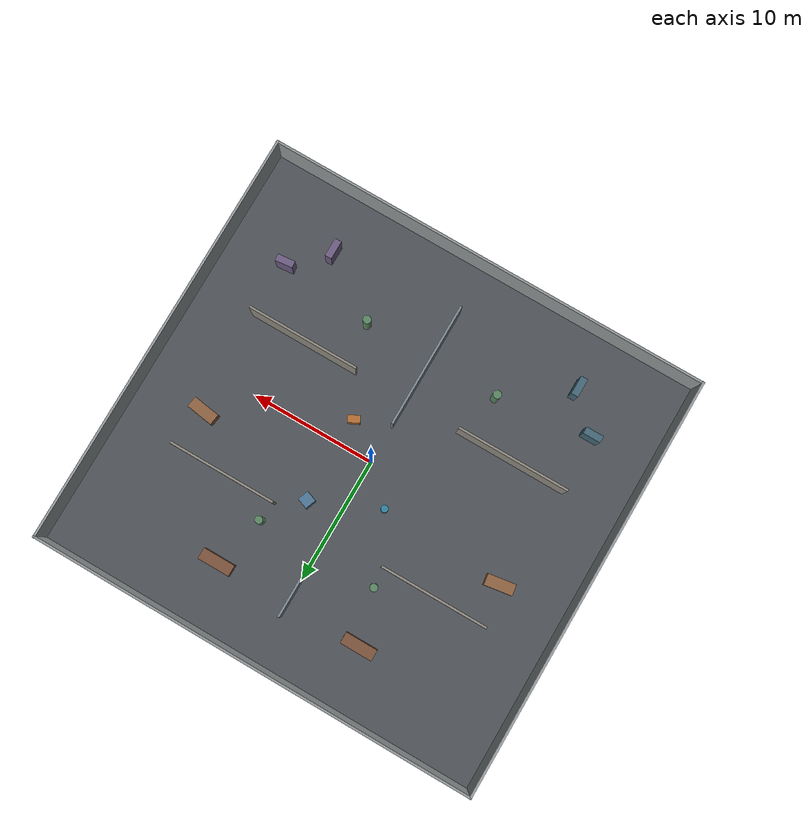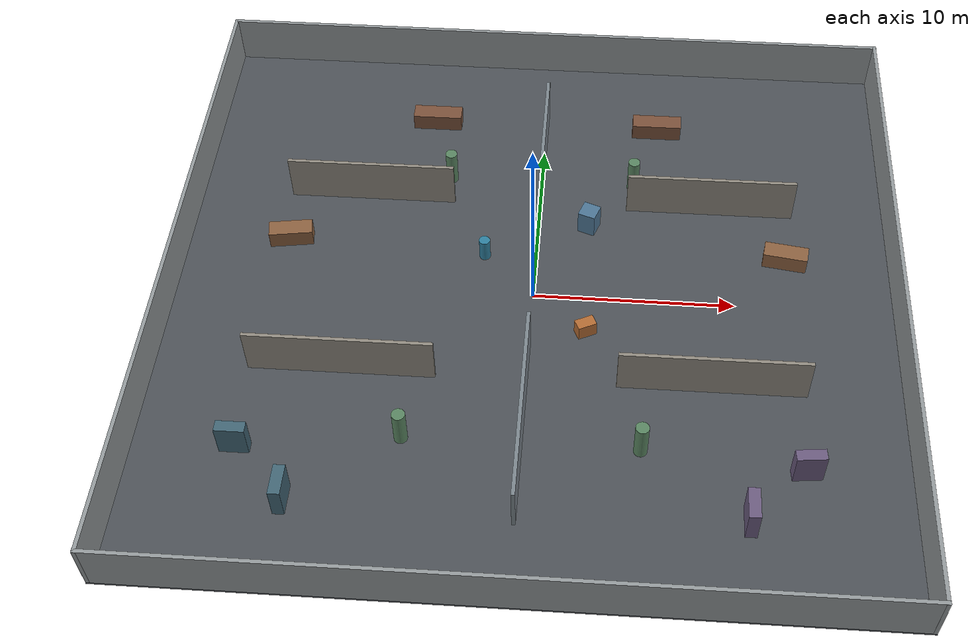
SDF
<?xml version="1.0"?>
<sdf version="1.8">
  <world name="single_floor_complex_large">
    <plugin name="gz::sim::systems::Physics" filename="ignition-gazebo-physics-system"/>
    <plugin name="gz::sim::systems::UserCommands" filename="ignition-gazebo-user-commands-system"/>
    <plugin name="gz::sim::systems::SceneBroadcaster" filename="ignition-gazebo-scene-broadcaster-system"/>
    <plugin name="gz::sim::systems::Sensors" filename="ignition-gazebo-sensors-system">
      <render_engine>ogre2</render_engine>
    </plugin>
    <plugin name="gz::sim::systems::Imu" filename="ignition-gazebo-imu-system"/>

    <physics name="single_floor_large_physics" type="ignored">
      <max_step_size>0.01</max_step_size>
      <real_time_update_rate>100</real_time_update_rate>
      <real_time_factor>1.0</real_time_factor>
    </physics>
    <gravity>0 0 -9.8</gravity>
    <magnetic_field>6.0e-06 2.3e-05 -4.2e-05</magnetic_field>
    <scene>
      <ambient>0.66 0.67 0.70 1</ambient>
      <background>0.11 0.12 0.14 1</background>
      <shadows>false</shadows>
    </scene>

    <gui fullscreen="0">
      <camera name="user_camera">
        <pose>-10.0 -20.0 8.0 0 0.50 0.70</pose>
        <projection_type>perspective</projection_type>
      </camera>
    </gui>

    <light name="sun" type="directional">
      <cast_shadows>false</cast_shadows>
      <pose>0 0 18 0 0 0</pose>
      <diffuse>0.95 0.95 0.95 1</diffuse>
      <specular>0.12 0.12 0.12 1</specular>
      <attenuation>
        <range>1000</range>
        <constant>0.9</constant>
        <linear>0.01</linear>
        <quadratic>0.001</quadratic>
      </attenuation>
      <direction>-0.25 0.35 -1</direction>
    </light>

    <model name="floor">
      <static>true</static>
      <pose>0 0 -0.05 0 0 0</pose>
      <link name="link">
        <collision name="collision"><geometry><box><size>36 34 0.10</size></box></geometry></collision>
        <visual name="visual"><geometry><box><size>36 34 0.10</size></box></geometry><material><ambient>0.30 0.32 0.34 1</ambient><diffuse>0.30 0.32 0.34 1</diffuse></material></visual>
      </link>
    </model>

    <model name="wall_north">
      <static>true</static>
      <pose>0 16.9 1.3 0 0 0</pose>
      <link name="link">
        <collision name="collision"><geometry><box><size>36 0.18 2.6</size></box></geometry></collision>
        <visual name="visual"><geometry><box><size>36 0.18 2.6</size></box></geometry><material><ambient>0.58 0.60 0.61 1</ambient><diffuse>0.58 0.60 0.61 1</diffuse></material></visual>
      </link>
    </model>
    <model name="wall_south">
      <static>true</static>
      <pose>0 -16.9 1.3 0 0 0</pose>
      <link name="link">
        <collision name="collision"><geometry><box><size>36 0.18 2.6</size></box></geometry></collision>
        <visual name="visual"><geometry><box><size>36 0.18 2.6</size></box></geometry><material><ambient>0.58 0.60 0.61 1</ambient><diffuse>0.58 0.60 0.61 1</diffuse></material></visual>
      </link>
    </model>
    <model name="wall_west">
      <static>true</static>
      <pose>-17.9 0 1.3 0 0 0</pose>
      <link name="link">
        <collision name="collision"><geometry><box><size>0.18 34 2.6</size></box></geometry></collision>
        <visual name="visual"><geometry><box><size>0.18 34 2.6</size></box></geometry><material><ambient>0.58 0.60 0.61 1</ambient><diffuse>0.58 0.60 0.61 1</diffuse></material></visual>
      </link>
    </model>
    <model name="wall_east">
      <static>true</static>
      <pose>17.9 0 1.3 0 0 0</pose>
      <link name="link">
        <collision name="collision"><geometry><box><size>0.18 34 2.6</size></box></geometry></collision>
        <visual name="visual"><geometry><box><size>0.18 34 2.6</size></box></geometry><material><ambient>0.58 0.60 0.61 1</ambient><diffuse>0.58 0.60 0.61 1</diffuse></material></visual>
      </link>
    </model>

    <model name="central_spine_south">
      <static>true</static>
      <pose>0 -8.0 1.25 0 0 0</pose>
      <link name="link">
        <collision name="collision"><geometry><box><size>0.18 10.0 2.5</size></box></geometry></collision>
        <visual name="visual"><geometry><box><size>0.18 10.0 2.5</size></box></geometry><material><ambient>0.48 0.52 0.55 1</ambient><diffuse>0.48 0.52 0.55 1</diffuse></material></visual>
      </link>
    </model>
    <model name="central_spine_north">
      <static>true</static>
      <pose>0 8.0 1.25 0 0 0</pose>
      <link name="link">
        <collision name="collision"><geometry><box><size>0.18 10.0 2.5</size></box></geometry></collision>
        <visual name="visual"><geometry><box><size>0.18 10.0 2.5</size></box></geometry><material><ambient>0.48 0.52 0.55 1</ambient><diffuse>0.48 0.52 0.55 1</diffuse></material></visual>
      </link>
    </model>
    <model name="west_room_divider_south">
      <static>true</static>
      <pose>-8.8 -5.2 1.25 0 0 1.5708</pose>
      <link name="link">
        <collision name="collision"><geometry><box><size>0.18 9.0 2.5</size></box></geometry></collision>
        <visual name="visual"><geometry><box><size>0.18 9.0 2.5</size></box></geometry><material><ambient>0.56 0.54 0.50 1</ambient><diffuse>0.56 0.54 0.50 1</diffuse></material></visual>
      </link>
    </model>
    <model name="east_room_divider_south">
      <static>true</static>
      <pose>8.8 -5.2 1.25 0 0 1.5708</pose>
      <link name="link">
        <collision name="collision"><geometry><box><size>0.18 9.0 2.5</size></box></geometry></collision>
        <visual name="visual"><geometry><box><size>0.18 9.0 2.5</size></box></geometry><material><ambient>0.56 0.54 0.50 1</ambient><diffuse>0.56 0.54 0.50 1</diffuse></material></visual>
      </link>
    </model>
    <model name="west_room_divider_north">
      <static>true</static>
      <pose>-8.8 6.2 1.25 0 0 1.5708</pose>
      <link name="link">
        <collision name="collision"><geometry><box><size>0.18 8.6 2.5</size></box></geometry></collision>
        <visual name="visual"><geometry><box><size>0.18 8.6 2.5</size></box></geometry><material><ambient>0.56 0.54 0.50 1</ambient><diffuse>0.56 0.54 0.50 1</diffuse></material></visual>
      </link>
    </model>
    <model name="east_room_divider_north">
      <static>true</static>
      <pose>8.8 6.2 1.25 0 0 1.5708</pose>
      <link name="link">
        <collision name="collision"><geometry><box><size>0.18 8.6 2.5</size></box></geometry></collision>
        <visual name="visual"><geometry><box><size>0.18 8.6 2.5</size></box></geometry><material><ambient>0.56 0.54 0.50 1</ambient><diffuse>0.56 0.54 0.50 1</diffuse></material></visual>
      </link>
    </model>

    <model name="server_rack_west_a">
      <static>true</static>
      <pose>-13.0 -9.8 0.85 0 0 0</pose>
      <link name="link">
        <collision name="collision"><geometry><box><size>1.4 0.55 1.7</size></box></geometry></collision>
        <visual name="visual"><geometry><box><size>1.4 0.55 1.7</size></box></geometry><material><ambient>0.26 0.40 0.46 1</ambient><diffuse>0.26 0.40 0.46 1</diffuse></material></visual>
      </link>
    </model>
    <model name="server_rack_west_b">
      <static>true</static>
      <pose>-10.4 -12.4 0.85 0 0 1.5708</pose>
      <link name="link">
        <collision name="collision"><geometry><box><size>1.5 0.55 1.7</size></box></geometry></collision>
        <visual name="visual"><geometry><box><size>1.5 0.55 1.7</size></box></geometry><material><ambient>0.26 0.40 0.46 1</ambient><diffuse>0.26 0.40 0.46 1</diffuse></material></visual>
      </link>
    </model>
    <model name="server_rack_east_a">
      <static>true</static>
      <pose>13.0 -9.6 0.85 0 0 0.10</pose>
      <link name="link">
        <collision name="collision"><geometry><box><size>1.4 0.55 1.7</size></box></geometry></collision>
        <visual name="visual"><geometry><box><size>1.4 0.55 1.7</size></box></geometry><material><ambient>0.42 0.36 0.50 1</ambient><diffuse>0.42 0.36 0.50 1</diffuse></material></visual>
      </link>
    </model>
    <model name="server_rack_east_b">
      <static>true</static>
      <pose>10.4 -12.2 0.85 0 0 1.5708</pose>
      <link name="link">
        <collision name="collision"><geometry><box><size>1.5 0.55 1.7</size></box></geometry></collision>
        <visual name="visual"><geometry><box><size>1.5 0.55 1.7</size></box></geometry><material><ambient>0.42 0.36 0.50 1</ambient><diffuse>0.42 0.36 0.50 1</diffuse></material></visual>
      </link>
    </model>
    <model name="lab_table_west">
      <static>true</static>
      <pose>-12.6 3.0 0.45 0 0 0.15</pose>
      <link name="link">
        <collision name="collision"><geometry><box><size>2.2 0.9 0.9</size></box></geometry></collision>
        <visual name="visual"><geometry><box><size>2.2 0.9 0.9</size></box></geometry><material><ambient>0.55 0.38 0.25 1</ambient><diffuse>0.55 0.38 0.25 1</diffuse></material></visual>
      </link>
    </model>
    <model name="lab_table_east">
      <static>true</static>
      <pose>12.6 3.0 0.45 0 0 -0.15</pose>
      <link name="link">
        <collision name="collision"><geometry><box><size>2.2 0.9 0.9</size></box></geometry></collision>
        <visual name="visual"><geometry><box><size>2.2 0.9 0.9</size></box></geometry><material><ambient>0.55 0.38 0.25 1</ambient><diffuse>0.55 0.38 0.25 1</diffuse></material></visual>
      </link>
    </model>
    <model name="workbench_north_west">
      <static>true</static>
      <pose>-6.0 12.0 0.45 0 0 0</pose>
      <link name="link">
        <collision name="collision"><geometry><box><size>2.6 0.9 0.9</size></box></geometry></collision>
        <visual name="visual"><geometry><box><size>2.6 0.9 0.9</size></box></geometry><material><ambient>0.48 0.32 0.23 1</ambient><diffuse>0.48 0.32 0.23 1</diffuse></material></visual>
      </link>
    </model>
    <model name="workbench_north_east">
      <static>true</static>
      <pose>6.0 12.0 0.45 0 0 0</pose>
      <link name="link">
        <collision name="collision"><geometry><box><size>2.6 0.9 0.9</size></box></geometry></collision>
        <visual name="visual"><geometry><box><size>2.6 0.9 0.9</size></box></geometry><material><ambient>0.48 0.32 0.23 1</ambient><diffuse>0.48 0.32 0.23 1</diffuse></material></visual>
      </link>
    </model>

    <model name="column_south_west">
      <static>true</static>
      <pose>-5.5 -8.8 0.95 0 0 0</pose>
      <link name="link">
        <collision name="collision"><geometry><cylinder><radius>0.32</radius><length>1.9</length></cylinder></geometry></collision>
        <visual name="visual"><geometry><cylinder><radius>0.32</radius><length>1.9</length></cylinder></geometry><material><ambient>0.35 0.52 0.38 1</ambient><diffuse>0.35 0.52 0.38 1</diffuse></material></visual>
      </link>
    </model>
    <model name="column_south_east">
      <static>true</static>
      <pose>5.5 -8.8 0.95 0 0 0</pose>
      <link name="link">
        <collision name="collision"><geometry><cylinder><radius>0.32</radius><length>1.9</length></cylinder></geometry></collision>
        <visual name="visual"><geometry><cylinder><radius>0.32</radius><length>1.9</length></cylinder></geometry><material><ambient>0.35 0.52 0.38 1</ambient><diffuse>0.35 0.52 0.38 1</diffuse></material></visual>
      </link>
    </model>
    <model name="column_north_west">
      <static>true</static>
      <pose>-4.8 7.8 0.95 0 0 0</pose>
      <link name="link">
        <collision name="collision"><geometry><cylinder><radius>0.30</radius><length>1.9</length></cylinder></geometry></collision>
        <visual name="visual"><geometry><cylinder><radius>0.30</radius><length>1.9</length></cylinder></geometry><material><ambient>0.35 0.52 0.38 1</ambient><diffuse>0.35 0.52 0.38 1</diffuse></material></visual>
      </link>
    </model>
    <model name="column_north_east">
      <static>true</static>
      <pose>4.8 7.8 0.95 0 0 0</pose>
      <link name="link">
        <collision name="collision"><geometry><cylinder><radius>0.30</radius><length>1.9</length></cylinder></geometry></collision>
        <visual name="visual"><geometry><cylinder><radius>0.30</radius><length>1.9</length></cylinder></geometry><material><ambient>0.35 0.52 0.38 1</ambient><diffuse>0.35 0.52 0.38 1</diffuse></material></visual>
      </link>
    </model>

    <model name="inspection_cart_static">
      <static>true</static>
      <pose>2.7 -2.1 0.40 0 0 0.45</pose>
      <link name="link">
        <collision name="collision"><geometry><box><size>0.95 0.58 0.8</size></box></geometry></collision>
        <visual name="visual"><geometry><box><size>0.95 0.58 0.8</size></box></geometry><material><ambient>0.70 0.42 0.20 1</ambient><diffuse>0.70 0.42 0.20 1</diffuse></material></visual>
      </link>
    </model>
    <model name="charging_pillar">
      <static>true</static>
      <pose>-2.6 2.5 0.60 0 0 0</pose>
      <link name="link">
        <collision name="collision"><geometry><cylinder><radius>0.28</radius><length>1.2</length></cylinder></geometry></collision>
        <visual name="visual"><geometry><cylinder><radius>0.28</radius><length>1.2</length></cylinder></geometry><material><ambient>0.18 0.50 0.62 1</ambient><diffuse>0.18 0.50 0.62 1</diffuse></material></visual>
      </link>
    </model>
    <model name="triage_kiosk">
      <static>true</static>
      <pose>2.6 4.8 0.65 0 0 -0.35</pose>
      <link name="link">
        <collision name="collision"><geometry><box><size>0.9 0.9 1.3</size></box></geometry></collision>
        <visual name="visual"><geometry><box><size>0.9 0.9 1.3</size></box></geometry><material><ambient>0.30 0.46 0.58 1</ambient><diffuse>0.30 0.46 0.58 1</diffuse></material></visual>
      </link>
    </model>
  </world>
</sdf>
